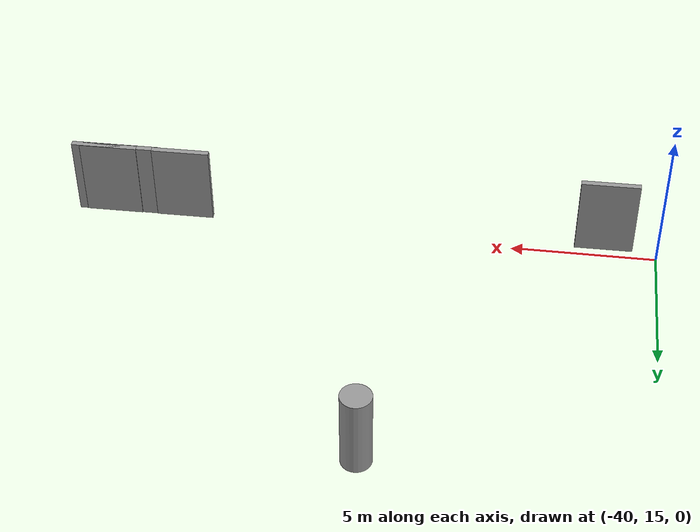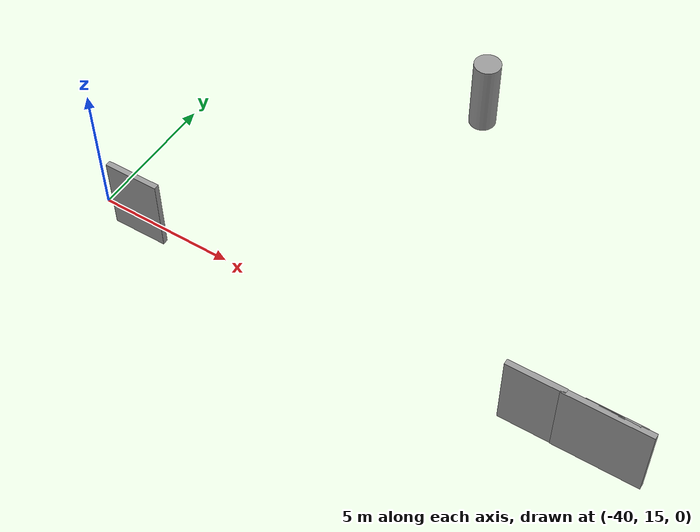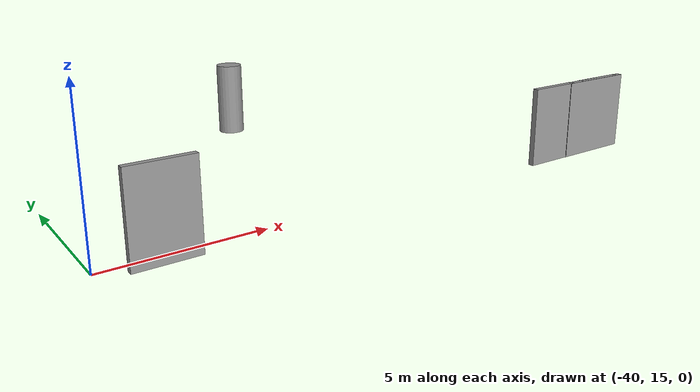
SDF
<sdf version="1.6">
 <world name="default">
  <model name="g3_clone_clone_0_clone_0_0_0_0_0_0_clone_clone_clone_0_clone_0_clone_0_clone_0_clone_clone_clone_0">
   <link name="link">
    <pose>1.55996 -1.33829 1.4 0 -0 0.001589</pose>
    <inertial>
     <mass>1</mass>
     <inertia><ixx>1</ixx><ixy>0</ixy><ixz>0</ixz><iyy>1</iyy><iyz>0</iyz><izz>1</izz></inertia>
    </inertial>
    <visual name="visual">
     <cast_shadows>0</cast_shadows>
     <geometry><box><size>2 0.2 2.8</size></box></geometry>
     <material>
      <script>
       <uri>model://grey_wall/materials/scripts</uri>
       <uri>model://grey_wall/materials/textures</uri>
       <name>vrc/grey_wall</name>
      </script>
      <ambient>1 1 1 1</ambient>
      <diffuse>1 1 1 1</diffuse>
      <specular>0 0 0 1</specular>
      <emissive>0 0 0 1</emissive>
      <shader type="vertex"><normal_map>__default__</normal_map></shader>
     </material>
    </visual>
    <collision name="collision">
     <geometry><box><size>2 0.2 2.8</size></box></geometry>
     <surface>
      <friction>
       <ode><mu>1</mu><mu2>1</mu2><fdir1>0 0 0</fdir1><slip1>0</slip1><slip2>0</slip2></ode>
       <torsional>
        <coefficient>1</coefficient>
        <patch_radius>0</patch_radius>
        <surface_radius>0</surface_radius>
        <use_patch_radius>1</use_patch_radius>
        <ode><slip>0</slip></ode>
       </torsional>
      </friction>
      <bounce><restitution_coefficient>0</restitution_coefficient><threshold>1e+06</threshold></bounce>
      <contact>
       <collide_without_contact>0</collide_without_contact>
       <collide_without_contact_bitmask>1</collide_without_contact_bitmask>
       <collide_bitmask>1</collide_bitmask>
       <ode>
        <soft_cfm>0</soft_cfm>
        <soft_erp>0.2</soft_erp>
        <kp>1e+13</kp>
        <kd>1</kd>
        <max_vel>0.01</max_vel>
        <min_depth>0</min_depth>
       </ode>
       <bullet>
        <split_impulse>1</split_impulse>
        <split_impulse_penetration_threshold>-0.01</split_impulse_penetration_threshold>
        <soft_cfm>0</soft_cfm>
        <soft_erp>0.2</soft_erp>
        <kp>1e+13</kp>
        <kd>1</kd>
       </bullet>
      </contact>
     </surface>
    </collision>
   </link>
   <static>1</static>
   <pose>-24.9535 15.8887 0 0 -0 0.002262</pose>
  </model>
  <model name="g3_clone_clone_0_clone_0_0_0_0_0_0_clone_clone_clone_0_clone_0_clone_0_clone_0_clone_clone_clone_clone">
   <link name="link">
    <pose>1.55996 -1.33829 1.4 0 -0 0.001589</pose>
    <inertial>
     <mass>1</mass>
     <inertia><ixx>1</ixx><ixy>0</ixy><ixz>0</ixz><iyy>1</iyy><iyz>0</iyz><izz>1</izz></inertia>
    </inertial>
    <visual name="visual">
     <cast_shadows>0</cast_shadows>
     <geometry><box><size>2 0.2 2.8</size></box></geometry>
     <material>
      <script>
       <uri>model://grey_wall/materials/scripts</uri>
       <uri>model://grey_wall/materials/textures</uri>
       <name>vrc/grey_wall</name>
      </script>
      <ambient>1 1 1 1</ambient>
      <diffuse>1 1 1 1</diffuse>
      <specular>0 0 0 1</specular>
      <emissive>0 0 0 1</emissive>
      <shader type="vertex"><normal_map>__default__</normal_map></shader>
     </material>
    </visual>
    <collision name="collision">
     <geometry><box><size>2 0.2 2.8</size></box></geometry>
     <surface>
      <friction>
       <ode><mu>1</mu><mu2>1</mu2><fdir1>0 0 0</fdir1><slip1>0</slip1><slip2>0</slip2></ode>
       <torsional>
        <coefficient>1</coefficient>
        <patch_radius>0</patch_radius>
        <surface_radius>0</surface_radius>
        <use_patch_radius>1</use_patch_radius>
        <ode><slip>0</slip></ode>
       </torsional>
      </friction>
      <bounce><restitution_coefficient>0</restitution_coefficient><threshold>1e+06</threshold></bounce>
      <contact>
       <collide_without_contact>0</collide_without_contact>
       <collide_without_contact_bitmask>1</collide_without_contact_bitmask>
       <collide_bitmask>1</collide_bitmask>
       <ode>
        <soft_cfm>0</soft_cfm>
        <soft_erp>0.2</soft_erp>
        <kp>1e+13</kp>
        <kd>1</kd>
        <max_vel>0.01</max_vel>
        <min_depth>0</min_depth>
       </ode>
       <bullet>
        <split_impulse>1</split_impulse>
        <split_impulse_penetration_threshold>-0.01</split_impulse_penetration_threshold>
        <soft_cfm>0</soft_cfm>
        <soft_erp>0.2</soft_erp>
        <kp>1e+13</kp>
        <kd>1</kd>
       </bullet>
      </contact>
     </surface>
    </collision>
   </link>
   <static>1</static>
   <pose>-39.7506 15.8848 0 0 -0 0.002262</pose>
  </model>
  <model name="g3_clone_clone_0_clone_0_0_0_0_0_0_clone_clone_clone_0_clone_0_clone_0_clone_0_clone_clone_clone_0_clone_1">
   <link name="link">
    <pose>1.55996 -1.33829 1.4 0 -0 0.001589</pose>
    <inertial>
     <mass>1</mass>
     <inertia><ixx>1</ixx><ixy>0</ixy><ixz>0</ixz><iyy>1</iyy><iyz>0</iyz><izz>1</izz></inertia>
    </inertial>
    <visual name="visual">
     <cast_shadows>0</cast_shadows>
     <geometry><box><size>2 0.2 2.8</size></box></geometry>
     <material>
      <script>
       <uri>model://grey_wall/materials/scripts</uri>
       <uri>model://grey_wall/materials/textures</uri>
       <name>vrc/grey_wall</name>
      </script>
      <ambient>1 1 1 1</ambient>
      <diffuse>1 1 1 1</diffuse>
      <specular>0 0 0 1</specular>
      <emissive>0 0 0 1</emissive>
      <shader type="vertex"><normal_map>__default__</normal_map></shader>
     </material>
    </visual>
    <collision name="collision">
     <geometry><box><size>2 0.2 2.8</size></box></geometry>
     <surface>
      <friction>
       <ode><mu>1</mu><mu2>1</mu2><fdir1>0 0 0</fdir1><slip1>0</slip1><slip2>0</slip2></ode>
       <torsional>
        <coefficient>1</coefficient>
        <patch_radius>0</patch_radius>
        <surface_radius>0</surface_radius>
        <use_patch_radius>1</use_patch_radius>
        <ode><slip>0</slip></ode>
       </torsional>
      </friction>
      <bounce><restitution_coefficient>0</restitution_coefficient><threshold>1e+06</threshold></bounce>
      <contact>
       <collide_without_contact>0</collide_without_contact>
       <collide_without_contact_bitmask>1</collide_without_contact_bitmask>
       <collide_bitmask>1</collide_bitmask>
       <ode>
        <soft_cfm>0</soft_cfm>
        <soft_erp>0.2</soft_erp>
        <kp>1e+13</kp>
        <kd>1</kd>
        <max_vel>0.01</max_vel>
        <min_depth>0</min_depth>
       </ode>
       <bullet>
        <split_impulse>1</split_impulse>
        <split_impulse_penetration_threshold>-0.01</split_impulse_penetration_threshold>
        <soft_cfm>0</soft_cfm>
        <soft_erp>0.2</soft_erp>
        <kp>1e+13</kp>
        <kd>1</kd>
       </bullet>
      </contact>
     </surface>
    </collision>
   </link>
   <static>1</static>
   <pose>-22.4093 15.8973 0 0 -0 0.002262</pose>
  </model>
  <model name="g3_clone_clone_0_clone_0_0_0_0_0_0_clone_clone_clone_0_clone_0_clone_0_clone_0_clone_clone_clone_0_clone_2_0">
   <link name="link">
    <pose>-0.38996 -2.69541 1.4 0 -0 0.001589</pose>
    <inertial>
     <mass>1</mass>
     <inertia><ixx>1</ixx><ixy>0</ixy><ixz>0</ixz><iyy>1</iyy><iyz>0</iyz><izz>1</izz></inertia>
    </inertial>
    <visual name="visual">
     <cast_shadows>0</cast_shadows>
     <geometry><box><size>3 0.2 2.8</size></box></geometry>
     <material>
      <script>
       <uri>model://grey_wall/materials/scripts</uri>
       <uri>model://grey_wall/materials/textures</uri>
       <name>vrc/grey_wall</name>
      </script>
      <ambient>1 1 1 1</ambient>
      <diffuse>1 1 1 1</diffuse>
      <specular>0 0 0 1</specular>
      <emissive>0 0 0 1</emissive>
      <shader type="vertex"><normal_map>__default__</normal_map></shader>
     </material>
    </visual>
    <collision name="collision">
     <geometry><box><size>3 0.2 2.8</size></box></geometry>
     <surface>
      <friction>
       <ode><mu>1</mu><mu2>1</mu2><fdir1>0 0 0</fdir1><slip1>0</slip1><slip2>0</slip2></ode>
       <torsional>
        <coefficient>1</coefficient>
        <patch_radius>0</patch_radius>
        <surface_radius>0</surface_radius>
        <use_patch_radius>1</use_patch_radius>
        <ode><slip>0</slip></ode>
       </torsional>
      </friction>
      <bounce><restitution_coefficient>0</restitution_coefficient><threshold>1e+06</threshold></bounce>
      <contact>
       <collide_without_contact>0</collide_without_contact>
       <collide_without_contact_bitmask>1</collide_without_contact_bitmask>
       <collide_bitmask>1</collide_bitmask>
       <ode>
        <soft_cfm>0</soft_cfm>
        <soft_erp>0.2</soft_erp>
        <kp>1e+13</kp>
        <kd>1</kd>
        <max_vel>0.01</max_vel>
        <min_depth>0</min_depth>
       </ode>
       <bullet>
        <split_impulse>1</split_impulse>
        <split_impulse_penetration_threshold>-0.01</split_impulse_penetration_threshold>
        <soft_cfm>0</soft_cfm>
        <soft_erp>0.2</soft_erp>
        <kp>1e+13</kp>
        <kd>1</kd>
       </bullet>
      </contact>
     </surface>
    </collision>
   </link>
   <static>1</static>
   <pose>-20.6849 17.2413 0 0 -0 0.002262</pose>
  </model>
  <model name="unit_cylinder_0_1_0_clone_1_clone_0_clone_clone">
   <link name="link">
    <pose>0.876728 0.324661 0.817505 0 -0 0</pose>
    <inertial>
     <mass>1</mass>
     <inertia><ixx>0.145833</ixx><ixy>0</ixy><ixz>0</ixz><iyy>0.145833</iyy><iyz>0</iyz><izz>0.125</izz></inertia>
    </inertial>
    <visual name="visual">
     <geometry><cylinder><radius>0.5</radius><length>2.8</length></cylinder></geometry>
     <material>
      <script><name>Gazebo/Grey</name><uri>file://media/materials/scripts/gazebo.material</uri></script>
      <ambient>0.3 0.3 0.3 1</ambient>
      <diffuse>0.7 0.7 0.7 1</diffuse>
      <specular>0.01 0.01 0.01 1</specular>
      <emissive>0 0 0 1</emissive>
      <shader type="vertex"><normal_map>__default__</normal_map></shader>
     </material>
    </visual>
    <collision name="collision">
     <geometry><cylinder><radius>0.5</radius><length>2.8</length></cylinder></geometry>
     <surface>
      <friction>
       <ode><mu>1</mu><mu2>1</mu2><fdir1>0 0 0</fdir1><slip1>0</slip1><slip2>0</slip2></ode>
       <torsional>
        <coefficient>1</coefficient>
        <patch_radius>0</patch_radius>
        <surface_radius>0</surface_radius>
        <use_patch_radius>1</use_patch_radius>
        <ode><slip>0</slip></ode>
       </torsional>
      </friction>
      <bounce><restitution_coefficient>0</restitution_coefficient><threshold>1e+06</threshold></bounce>
      <contact>
       <collide_without_contact>0</collide_without_contact>
       <collide_without_contact_bitmask>1</collide_without_contact_bitmask>
       <collide_bitmask>1</collide_bitmask>
       <ode>
        <soft_cfm>0</soft_cfm>
        <soft_erp>0.2</soft_erp>
        <kp>1e+13</kp>
        <kd>1</kd>
        <max_vel>0.01</max_vel>
        <min_depth>0</min_depth>
       </ode>
       <bullet>
        <split_impulse>1</split_impulse>
        <split_impulse_penetration_threshold>-0.01</split_impulse_penetration_threshold>
        <soft_cfm>0</soft_cfm>
        <soft_erp>0.2</soft_erp>
        <kp>1e+13</kp>
        <kd>1</kd>
       </bullet>
      </contact>
     </surface>
    </collision>
   </link>
   <static>0</static>
   <pose>-31.7809 24.9995 0.582488 0 0 -5.5e-05</pose>
  </model>
 </world>
</sdf>
